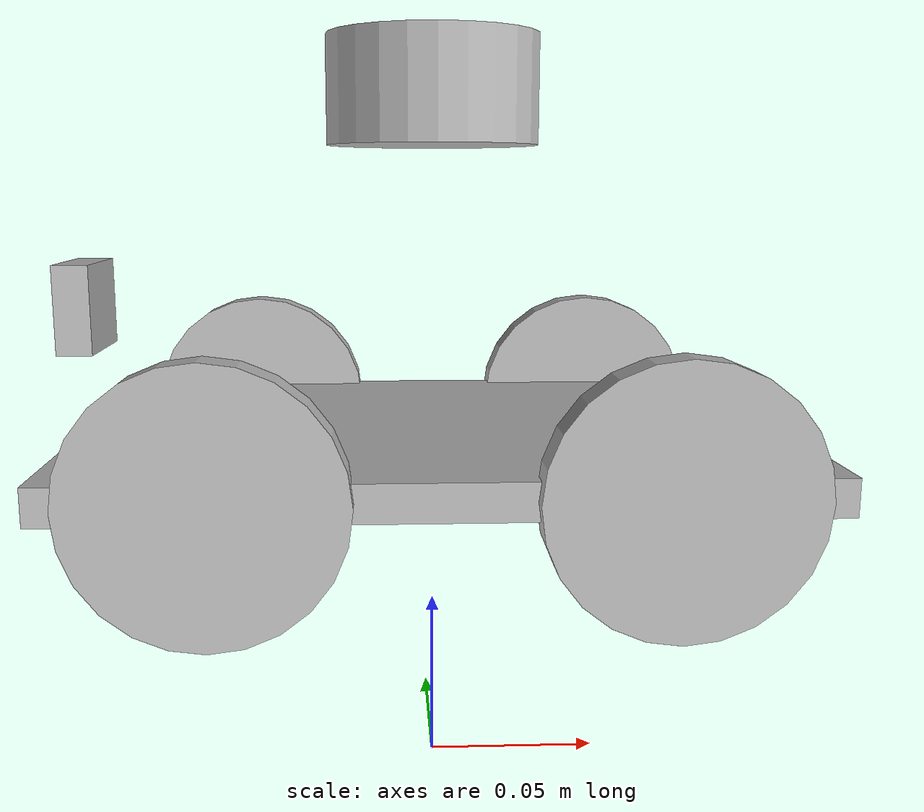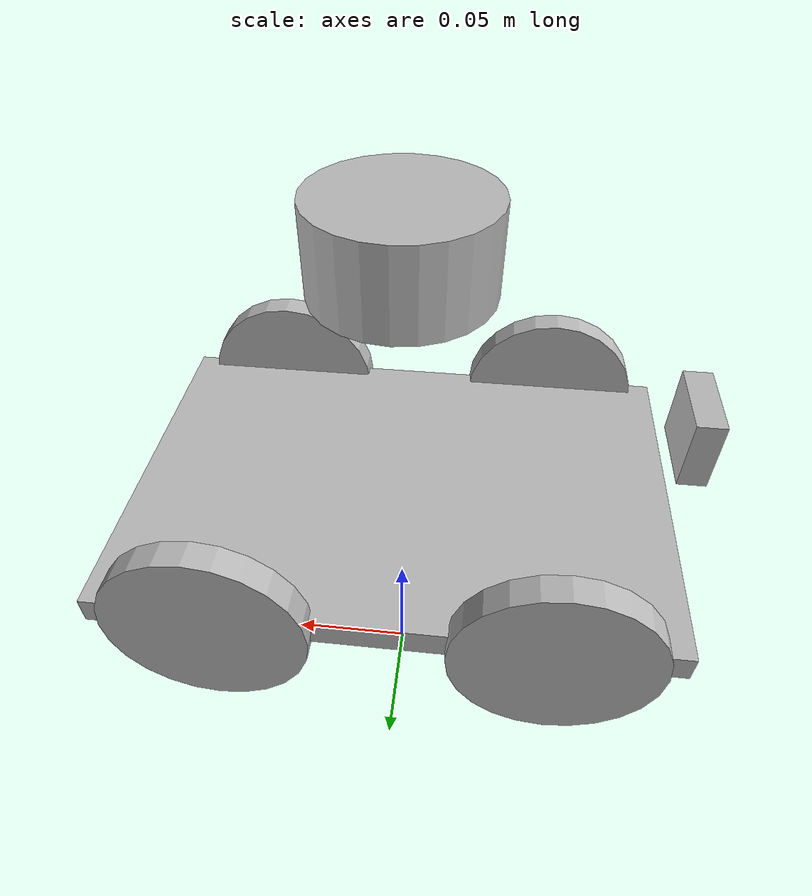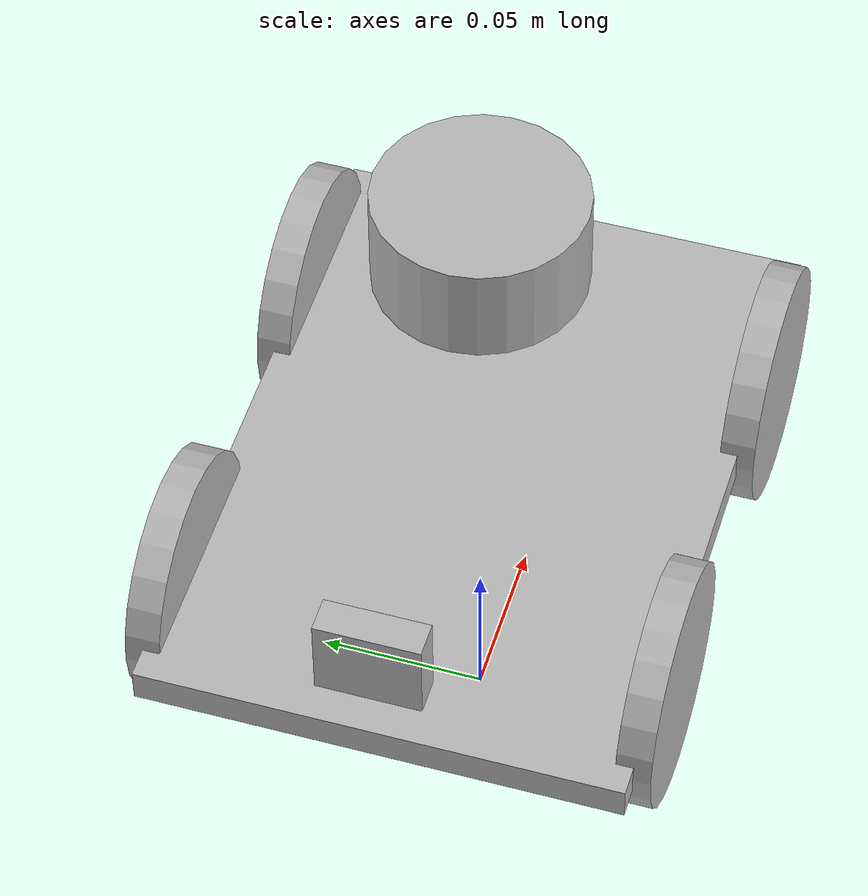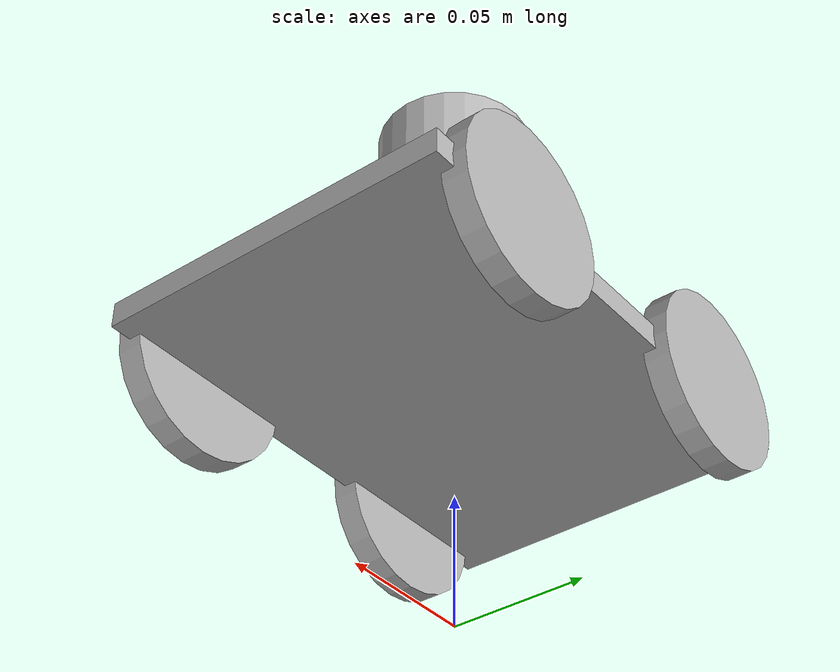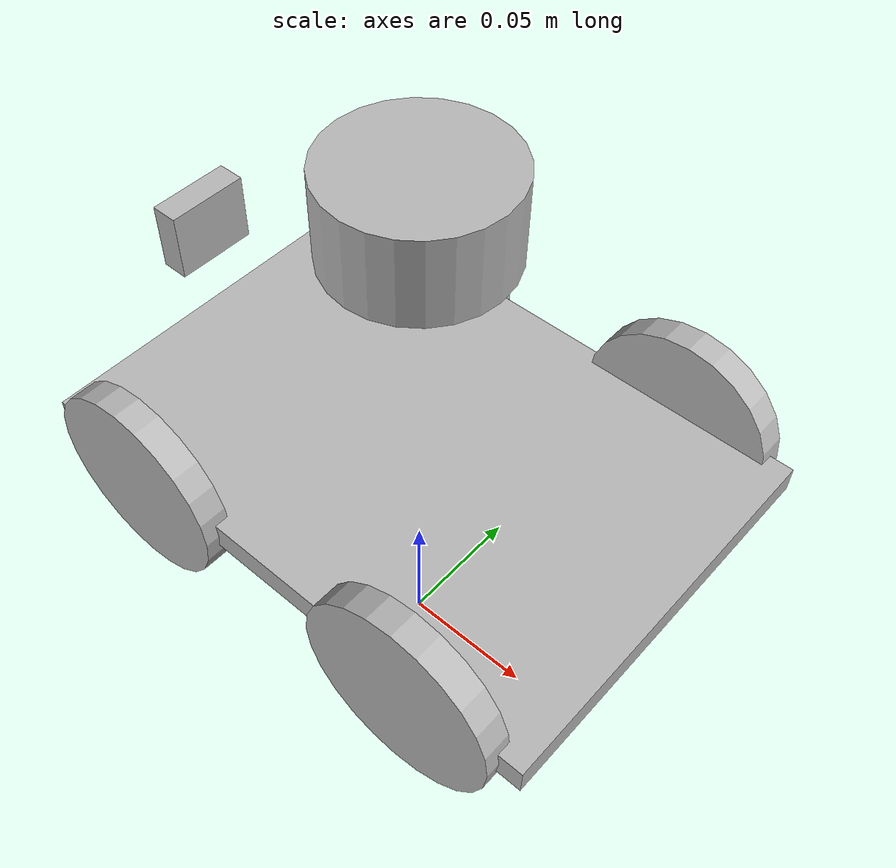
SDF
<!-- Reference : https://medium.com/creating-a-gazebo-simulation-with-ros2-for-your/introduction-8daf6efa12f4 -->

<sdf version='1.5'>

    <!-- Car-like model with wheels -->
    <model name='agent_gazebo'>

        <!-- Define the model as moving object -->
        <static>false</static>

        <link name='chassis'>
            <pose>0 0 0.1 0 0 0</pose>

            <collision name='collision'>
                <geometry>
                    <box>
                        <size>.2 .14 .01</size>
                    </box>
                </geometry>
            </collision>

            <visual name='visual'>
                <geometry>
                    <box>
                        <size>.2 .14 .01</size>
                    </box>
                </geometry>
            </visual>
        </link>

        <link name='front_left_wheel'>
            <pose>0.057 0.07 0.1 0 1.5707 1.5707</pose>

            <collision name='collision'>
                <geometry>
                    <cylinder>
                        <radius>0.035</radius>
                        <length>0.01</length>
                    </cylinder>
                </geometry>
            </collision>

            <visual name='visual'>
                <geometry>
                    <cylinder>
                        <radius>0.035</radius>
                        <length>0.01</length>
                    </cylinder>
                </geometry>
            </visual>
        </link>

        <link name='front_right_wheel'>
            <pose>0.057 -0.07 0.1 0 1.5707 1.5707</pose>

            <collision name='collision'>
                <geometry>
                    <cylinder>
                        <radius>0.035</radius>
                        <length>0.01</length>
                    </cylinder>
                </geometry>
            </collision>

            <visual name='visual'>
                <geometry>
                    <cylinder>
                        <radius>0.035</radius>
                        <length>0.01</length>
                    </cylinder>
                </geometry>
            </visual>
        </link>

        <link name='back_left_wheel'>
            <pose>-0.057 0.07 0.1 0 1.5707 1.5707</pose>

            <collision name='collision'>
                <geometry>
                    <cylinder>
                        <radius>0.035</radius>
                        <length>0.01</length>
                    </cylinder>
                </geometry>
            </collision>

            <visual name='visual'>
                <geometry>
                    <cylinder>
                        <radius>0.035</radius>
                        <length>0.01</length>
                    </cylinder>
                </geometry>
            </visual>
        </link>

        <link name='back_right_wheel'>
            <pose>-0.057 -0.07 0.1 0 1.5707 1.5707</pose>

            <collision name='collision'>
                <geometry>
                    <cylinder>
                        <radius>0.035</radius>
                        <length>0.01</length>
                    </cylinder>
                </geometry>
            </collision>

            <visual name='visual'>
                <geometry>
                    <cylinder>
                        <radius>0.035</radius>
                        <length>0.01</length>
                    </cylinder>
                </geometry>
            </visual>
        </link>

        <joint type='revolute' name='front_left_wheel_hinge'>
            <pose>0 0 -0.03 0 0 0</pose>
            <child>front_left_wheel</child>
            <parent>chassis</parent>
            <axis>
                <xyz>0 0 1</xyz>
            </axis>
        </joint>

        <joint type='revolute' name='front_right_wheel_hinge'>
            <pose>0 0 0.03 0 0 0</pose>
            <child>front_right_wheel</child>
            <parent>chassis</parent>
            <axis>
                <xyz>0 0 1</xyz>
            </axis>
        </joint>

        <joint type='revolute' name='back_left_wheel_hinge'>
            <pose>0 0 -0.03 0 0 0</pose>
            <child>back_left_wheel</child>
            <parent>chassis</parent>
            <axis>
                <xyz>0 0 1</xyz>
            </axis>
        </joint>

        <joint type='revolute' name='back_right_wheel_hinge'>
            <pose>0 0 0.03 0 0 0</pose>
            <child>back_left_wheel</child>
            <parent>chassis</parent>
            <axis>
                <xyz>0 0 1</xyz>
            </axis>
        </joint>

        <!-- LiDAR Sensor -->
        <link name='lidar'>
            <pose>0 0 0.2 0 0 0 0</pose>
            <sensor name='rplidar' type='ray'>
                <always_on>true</always_on>
                <update_rate>30</update_rate>
                <visualize>1</visualize>
                <topic>scan</topic>
                <ray>
                    <scan>
                        <horizontal>
                            <samples>360</samples>
                            <resolution>1</resolution>
                            <min_angle>0</min_angle>
                            <max_angle>6.28</max_angle>
                        </horizontal>
                    </scan>
                    <range>
                        <min>0.1</min>
                        <max>12</max>
                        <resolution>0.2</resolution>
                    </range>
                </ray>
            </sensor>

            <visual name='visual'>
                <geometry>
                    <cylinder>
                        <radius>0.03</radius>
                        <length>0.03</length>
                    </cylinder>
                </geometry>
            </visual>
        </link>

        <joint name='lidar_joint' type='fixed'>
            <parent>chassis</parent>
            <child>lidar</child>
        </joint>

        <!-- Camera Sensor -->
        <link name='camera'>
            <pose>-0.1 0 0.14 0 0 3.14</pose>
            <sensor type='camera' name='pi_camera'>
                <camera>
                    <horizontal_fov>1.047</horizontal_fov>
                    <image>
                        <width>320</width>
                        <height>240</height>
                    </image>
                    <clip>
                        <near>0.1</near>
                        <far>100</far>
                    </clip>
                </camera>
                <always_on>1</always_on>
                <update_rate>5</update_rate>
                <visualize>true</visualize>
            </sensor>

            <visual name='visual'>
                <geometry>
                    <box>
                        <size>0.01 0.03 0.025</size>
                    </box>
                </geometry>
            </visual>
        </link>

        <joint name='camera_joint' type='fixed'>
            <parent>chassis</parent>
            <child>camera</child>
        </joint>

    </model>
</sdf>
